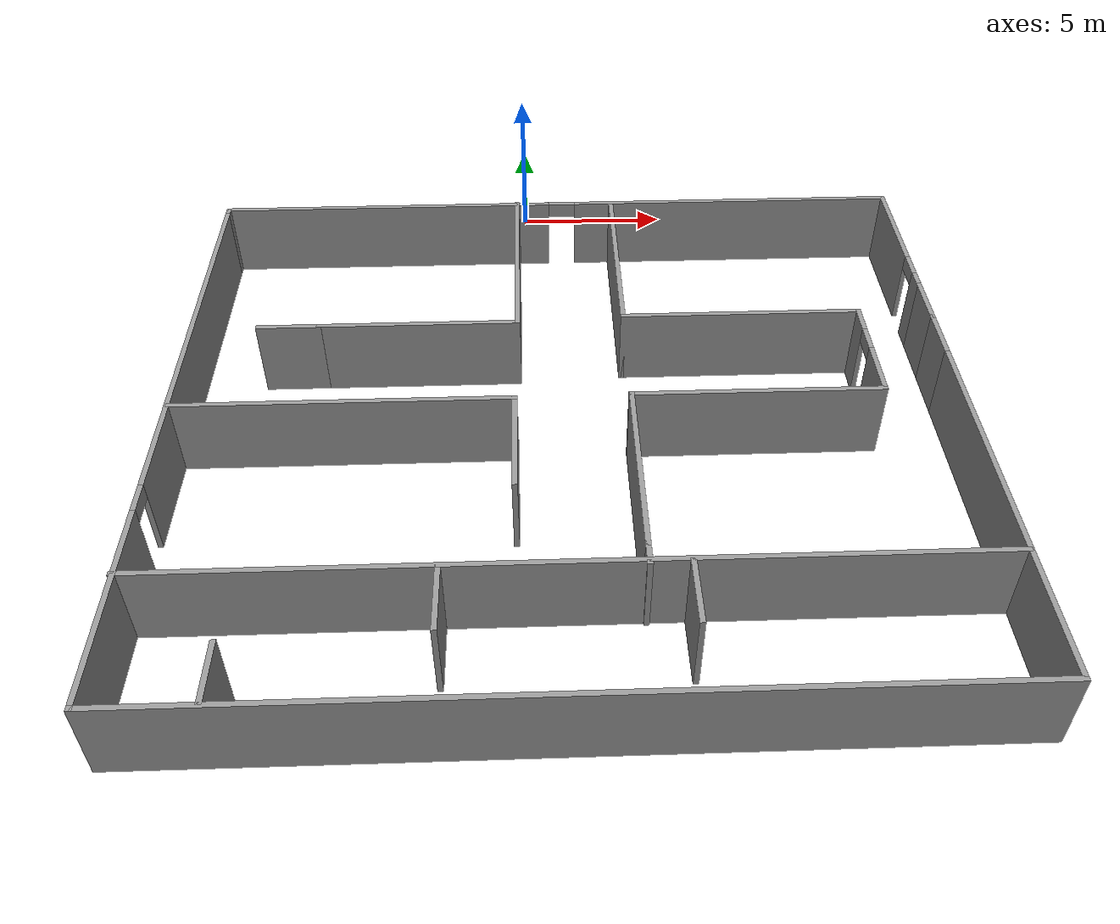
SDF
<?xml version='1.0'?>
<sdf version='1.7'>
  <model name='Multi_room_building'>
    <pose>1.14787 -11.2692 0 0 -0 0</pose>
    <link name='Door_3'>
      <collision name='Door_3_Collision'>
        <geometry>
          <box>
            <size>0.9 0.17 2</size>
          </box>
        </geometry>
        <pose>0 0 1 0 -0 0</pose>
      </collision>
      <visual name='Door_3_Visual'>
        <pose>0 0 1 0 -0 0</pose>
        <geometry>
          <box>
            <size>0.9 0.17 2</size>
          </box>
        </geometry>
        <material>
          <script>
            <uri>file://media/materials/scripts/gazebo.material</uri>
            <name>Gazebo/Grey</name>
          </script>
        </material>
      </visual>
      <pose>0.509152 -7.15046 0 0 -0 0</pose>
    </link>
    <link name='Wall_16'>
      <pose>0.019726 8.70583 0 0 -0 0</pose>
      <visual name='Wall_16_Visual_0'>
        <pose>-5.91708 0 1.25 0 -0 0</pose>
        <geometry>
          <box>
            <size>11.1658 0.15 2.5</size>
          </box>
        </geometry>
        <material>
          <script>
            <uri>file://media/materials/scripts/gazebo.material</uri>
            <name>Gazebo/Grey</name>
          </script>
          <ambient>1 1 1 1</ambient>
        </material>
        <meta>
          <layer>0</layer>
        </meta>
      </visual>
      <collision name='Wall_16_Collision_0'>
        <geometry>
          <box>
            <size>11.1658 0.15 2.5</size>
          </box>
        </geometry>
        <pose>-5.91708 0 1.25 0 -0 0</pose>
      </collision>
      <visual name='Wall_16_Visual_1'>
        <pose>6.03292 0 1.25 0 -0 0</pose>
        <geometry>
          <box>
            <size>10.9342 0.15 2.5</size>
          </box>
        </geometry>
        <material>
          <script>
            <uri>file://media/materials/scripts/gazebo.material</uri>
            <name>Gazebo/Grey</name>
          </script>
          <ambient>1 1 1 1</ambient>
        </material>
        <meta>
          <layer>0</layer>
        </meta>
      </visual>
      <collision name='Wall_16_Collision_1'>
        <geometry>
          <box>
            <size>10.9342 0.15 2.5</size>
          </box>
        </geometry>
        <pose>6.03292 0 1.25 0 -0 0</pose>
      </collision>
      <visual name='Wall_16_Visual_2'>
        <pose>0.115847 0 2.25 0 -0 0</pose>
        <geometry>
          <box>
            <size>0.9 0.15 0.5</size>
          </box>
        </geometry>
        <material>
          <script>
            <uri>file://media/materials/scripts/gazebo.material</uri>
            <name>Gazebo/Grey</name>
          </script>
          <ambient>1 1 1 1</ambient>
        </material>
        <meta>
          <layer>0</layer>
        </meta>
      </visual>
      <collision name='Wall_16_Collision_2'>
        <geometry>
          <box>
            <size>0.9 0.15 0.5</size>
          </box>
        </geometry>
        <pose>0.115847 0 2.25 0 -0 0</pose>
      </collision>
    </link>
    <link name='Wall_17'>
      <pose>11.4447 6.15583 0 0 -0 -1.5708</pose>
      <visual name='Wall_17_Visual_0'>
        <pose>-0.807552 0 1.25 0 -0 0</pose>
        <geometry>
          <box>
            <size>3.6349 0.15 2.5</size>
          </box>
        </geometry>
        <material>
          <script>
            <uri>file://media/materials/scripts/gazebo.material</uri>
            <name>Gazebo/Grey</name>
          </script>
          <ambient>1 1 1 1</ambient>
        </material>
        <meta>
          <layer>0</layer>
        </meta>
      </visual>
      <collision name='Wall_17_Collision_0'>
        <geometry>
          <box>
            <size>3.6349 0.15 2.5</size>
          </box>
        </geometry>
        <pose>-0.807552 0 1.25 0 -0 0</pose>
      </collision>
      <visual name='Wall_17_Visual_1'>
        <pose>2.26745 0 1.25 0 -0 0</pose>
        <geometry>
          <box>
            <size>0.715105 0.15 2.5</size>
          </box>
        </geometry>
        <material>
          <script>
            <uri>file://media/materials/scripts/gazebo.material</uri>
            <name>Gazebo/Grey</name>
          </script>
          <ambient>1 1 1 1</ambient>
        </material>
        <meta>
          <layer>0</layer>
        </meta>
      </visual>
      <collision name='Wall_17_Collision_1'>
        <geometry>
          <box>
            <size>0.715105 0.15 2.5</size>
          </box>
        </geometry>
        <pose>2.26745 0 1.25 0 -0 0</pose>
      </collision>
      <visual name='Wall_17_Visual_2'>
        <pose>1.45989 0 2.25 0 -0 0</pose>
        <geometry>
          <box>
            <size>0.9 0.15 0.5</size>
          </box>
        </geometry>
        <material>
          <script>
            <uri>file://media/materials/scripts/gazebo.material</uri>
            <name>Gazebo/Grey</name>
          </script>
          <ambient>1 1 1 1</ambient>
        </material>
        <meta>
          <layer>0</layer>
        </meta>
      </visual>
      <collision name='Wall_17_Collision_2'>
        <geometry>
          <box>
            <size>0.9 0.15 0.5</size>
          </box>
        </geometry>
        <pose>1.45989 0 2.25 0 -0 0</pose>
      </collision>
    </link>
    <link name='Wall_18'>
      <collision name='Wall_18_Collision'>
        <geometry>
          <box>
            <size>1.75 0.15 2.5</size>
          </box>
        </geometry>
        <pose>0 0 1.25 0 -0 0</pose>
      </collision>
      <visual name='Wall_18_Visual'>
        <pose>0 0 1.25 0 -0 0</pose>
        <geometry>
          <box>
            <size>1.75 0.15 2.5</size>
          </box>
        </geometry>
        <material>
          <script>
            <uri>file://media/materials/scripts/gazebo.material</uri>
            <name>Gazebo/Grey</name>
          </script>
          <ambient>1 1 1 1</ambient>
        </material>
        <meta>
          <layer>0</layer>
        </meta>
      </visual>
      <pose>11.4447 2.80583 0 0 -0 -1.5708</pose>
    </link>
    <link name='Wall_20'>
      <collision name='Wall_20_Collision'>
        <geometry>
          <box>
            <size>1.75 0.15 2.5</size>
          </box>
        </geometry>
        <pose>0 0 1.25 0 -0 0</pose>
      </collision>
      <visual name='Wall_20_Visual'>
        <pose>0 0 1.25 0 -0 0</pose>
        <geometry>
          <box>
            <size>1.75 0.15 2.5</size>
          </box>
        </geometry>
        <material>
          <script>
            <uri>file://media/materials/scripts/gazebo.material</uri>
            <name>Gazebo/Grey</name>
          </script>
          <ambient>1 1 1 1</ambient>
        </material>
        <meta>
          <layer>0</layer>
        </meta>
      </visual>
      <pose>11.4447 1.20583 0 0 -0 -1.5708</pose>
    </link>
    <link name='Wall_22'>
      <collision name='Wall_22_Collision'>
        <geometry>
          <box>
            <size>11.75 0.15 2.5</size>
          </box>
        </geometry>
        <pose>0 0 1.25 0 -0 0</pose>
      </collision>
      <visual name='Wall_22_Visual'>
        <pose>0 0 1.25 0 -0 0</pose>
        <geometry>
          <box>
            <size>11.75 0.15 2.5</size>
          </box>
        </geometry>
        <material>
          <script>
            <uri>file://media/materials/scripts/gazebo.material</uri>
            <name>Gazebo/Grey</name>
          </script>
          <ambient>1 1 1 1</ambient>
        </material>
        <meta>
          <layer>0</layer>
        </meta>
      </visual>
      <pose>11.4447 -5.39417 0 0 -0 -1.5708</pose>
    </link>
    <link name='Wall_23'>
      <collision name='Wall_23_Collision'>
        <geometry>
          <box>
            <size>23 0.15 2.5</size>
          </box>
        </geometry>
        <pose>0 0 1.25 0 -0 0</pose>
      </collision>
      <visual name='Wall_23_Visual'>
        <pose>0 0 1.25 0 -0 0</pose>
        <geometry>
          <box>
            <size>23 0.15 2.5</size>
          </box>
        </geometry>
        <material>
          <script>
            <uri>file://media/materials/scripts/gazebo.material</uri>
            <name>Gazebo/Grey</name>
          </script>
          <ambient>1 1 1 1</ambient>
        </material>
        <meta>
          <layer>0</layer>
        </meta>
      </visual>
      <pose>0.019726 -11.1942 0 0 -0 3.14159</pose>
    </link>
    <link name='Wall_24'>
      <pose>-11.4053 -1.39417 0 0 -0 1.5708</pose>
      <visual name='Wall_24_Visual_0'>
        <pose>-6.88983 0 1.25 0 -0 0</pose>
        <geometry>
          <box>
            <size>5.97033 0.15 2.5</size>
          </box>
        </geometry>
        <material>
          <script>
            <uri>file://media/materials/scripts/gazebo.material</uri>
            <name>Gazebo/Grey</name>
          </script>
          <ambient>1 1 1 1</ambient>
        </material>
        <meta>
          <layer>0</layer>
        </meta>
      </visual>
      <collision name='Wall_24_Collision_0'>
        <geometry>
          <box>
            <size>5.97033 0.15 2.5</size>
          </box>
        </geometry>
        <pose>-6.88983 0 1.25 0 -0 0</pose>
      </collision>
      <visual name='Wall_24_Visual_1'>
        <pose>3.43517 0 1.25 0 -0 0</pose>
        <geometry>
          <box>
            <size>12.8797 0.15 2.5</size>
          </box>
        </geometry>
        <material>
          <script>
            <uri>file://media/materials/scripts/gazebo.material</uri>
            <name>Gazebo/Grey</name>
          </script>
          <ambient>1 1 1 1</ambient>
        </material>
        <meta>
          <layer>0</layer>
        </meta>
      </visual>
      <collision name='Wall_24_Collision_1'>
        <geometry>
          <box>
            <size>12.8797 0.15 2.5</size>
          </box>
        </geometry>
        <pose>3.43517 0 1.25 0 -0 0</pose>
      </collision>
      <visual name='Wall_24_Visual_2'>
        <pose>-3.45467 0 2.25 0 -0 0</pose>
        <geometry>
          <box>
            <size>0.9 0.15 0.5</size>
          </box>
        </geometry>
        <material>
          <script>
            <uri>file://media/materials/scripts/gazebo.material</uri>
            <name>Gazebo/Grey</name>
          </script>
          <ambient>1 1 1 1</ambient>
        </material>
        <meta>
          <layer>0</layer>
        </meta>
      </visual>
      <collision name='Wall_24_Collision_2'>
        <geometry>
          <box>
            <size>0.9 0.15 0.5</size>
          </box>
        </geometry>
        <pose>-3.45467 0 2.25 0 -0 0</pose>
      </collision>
    </link>
    <link name='Wall_25'>
      <collision name='Wall_25_Collision'>
        <geometry>
          <box>
            <size>0.45 0.15 2.5</size>
          </box>
        </geometry>
        <pose>0 0 1.25 0 -0 0</pose>
      </collision>
      <visual name='Wall_25_Visual'>
        <pose>0 0 1.25 0 -0 0</pose>
        <geometry>
          <box>
            <size>0.45 0.15 2.5</size>
          </box>
        </geometry>
        <material>
          <script>
            <uri>file://media/materials/scripts/gazebo.material</uri>
            <name>Gazebo/Grey</name>
          </script>
          <ambient>1 1 1 1</ambient>
        </material>
        <meta>
          <layer>0</layer>
        </meta>
      </visual>
      <pose>-11.4053 8.55583 0 0 -0 1.5708</pose>
    </link>
    <link name='Wall_27'>
      <collision name='Wall_27_Collision'>
        <geometry>
          <box>
            <size>6.75 0.15 2.5</size>
          </box>
        </geometry>
        <pose>0 0 1.25 0 -0 0</pose>
      </collision>
      <visual name='Wall_27_Visual'>
        <pose>0 0 1.25 0 -0 0</pose>
        <geometry>
          <box>
            <size>6.75 0.15 2.5</size>
          </box>
        </geometry>
        <material>
          <script>
            <uri>file://media/materials/scripts/gazebo.material</uri>
            <name>Gazebo/Grey</name>
          </script>
          <ambient>1 1 1 1</ambient>
        </material>
        <meta>
          <layer>0</layer>
        </meta>
      </visual>
      <pose>-1.41448 5.46554 0 0 -0 -1.5708</pose>
    </link>
    <link name='Wall_28'>
      <collision name='Wall_28_Collision'>
        <geometry>
          <box>
            <size>6.25 0.15 2.5</size>
          </box>
        </geometry>
        <pose>0 0 1.25 0 -0 0</pose>
      </collision>
      <visual name='Wall_28_Visual'>
        <pose>0 0 1.25 0 -0 0</pose>
        <geometry>
          <box>
            <size>6.25 0.15 2.5</size>
          </box>
        </geometry>
        <material>
          <script>
            <uri>file://media/materials/scripts/gazebo.material</uri>
            <name>Gazebo/Grey</name>
          </script>
          <ambient>1 1 1 1</ambient>
        </material>
        <meta>
          <layer>0</layer>
        </meta>
      </visual>
      <pose>-4.46448 2.16554 0 0 -0 3.14159</pose>
    </link>
    <link name='Wall_29'>
      <collision name='Wall_29_Collision'>
        <geometry>
          <box>
            <size>2 0.15 2.5</size>
          </box>
        </geometry>
        <pose>0 0 1.25 0 -0 0</pose>
      </collision>
      <visual name='Wall_29_Visual'>
        <pose>0 0 1.25 0 -0 0</pose>
        <geometry>
          <box>
            <size>2 0.15 2.5</size>
          </box>
        </geometry>
        <material>
          <script>
            <uri>file://media/materials/scripts/gazebo.material</uri>
            <name>Gazebo/Grey</name>
          </script>
          <ambient>1 1 1 1</ambient>
        </material>
        <meta>
          <layer>0</layer>
        </meta>
      </visual>
      <pose>-8.43948 2.16554 0 0 -0 3.14159</pose>
    </link>
    <link name='Wall_31'>
      <collision name='Wall_31_Collision'>
        <geometry>
          <box>
            <size>6.5 0.15 2.5</size>
          </box>
        </geometry>
        <pose>0 0 1.25 0 -0 0</pose>
      </collision>
      <visual name='Wall_31_Visual'>
        <pose>0 0 1.25 0 -0 0</pose>
        <geometry>
          <box>
            <size>6.5 0.15 2.5</size>
          </box>
        </geometry>
        <material>
          <script>
            <uri>file://media/materials/scripts/gazebo.material</uri>
            <name>Gazebo/Grey</name>
          </script>
          <ambient>1 1 1 1</ambient>
        </material>
        <meta>
          <layer>0</layer>
        </meta>
      </visual>
      <pose>1.85611 5.52643 0 0 -0 -1.5708</pose>
    </link>
    <link name='Wall_33'>
      <collision name='Wall_33_Collision'>
        <geometry>
          <box>
            <size>23 0.15 2.5</size>
          </box>
        </geometry>
        <pose>0 0 1.25 0 -0 0</pose>
      </collision>
      <visual name='Wall_33_Visual'>
        <pose>0 0 1.25 0 -0 0</pose>
        <geometry>
          <box>
            <size>23 0.15 2.5</size>
          </box>
        </geometry>
        <material>
          <script>
            <uri>file://media/materials/scripts/gazebo.material</uri>
            <name>Gazebo/Grey</name>
          </script>
          <ambient>1 1 1 1</ambient>
        </material>
        <meta>
          <layer>0</layer>
        </meta>
      </visual>
      <pose>-0.019727 -7.37845 0 0 -0 0</pose>
    </link>
    <link name='Wall_35'>
      <collision name='Wall_35_Collision'>
        <geometry>
          <box>
            <size>7.5 0.15 2.5</size>
          </box>
        </geometry>
        <pose>0 0 1.25 0 -0 0</pose>
      </collision>
      <visual name='Wall_35_Visual'>
        <pose>0 0 1.25 0 -0 0</pose>
        <geometry>
          <box>
            <size>7.5 0.15 2.5</size>
          </box>
        </geometry>
        <material>
          <script>
            <uri>file://media/materials/scripts/gazebo.material</uri>
            <name>Gazebo/Grey</name>
          </script>
          <ambient>1 1 1 1</ambient>
        </material>
        <meta>
          <layer>0</layer>
        </meta>
      </visual>
      <pose>5.53111 2.35143 0 0 -0 0</pose>
    </link>
    <link name='Wall_36'>
      <pose>9.20611 0.551429 0 0 -0 -1.5708</pose>
      <visual name='Wall_36_Visual_0'>
        <pose>-1.38212 0 1.25 0 -0 0</pose>
        <geometry>
          <box>
            <size>0.985757 0.15 2.5</size>
          </box>
        </geometry>
        <material>
          <script>
            <uri>file://media/materials/scripts/gazebo.material</uri>
            <name>Gazebo/Grey</name>
          </script>
          <ambient>1 1 1 1</ambient>
        </material>
        <meta>
          <layer>0</layer>
        </meta>
      </visual>
      <collision name='Wall_36_Collision_0'>
        <geometry>
          <box>
            <size>0.985757 0.15 2.5</size>
          </box>
        </geometry>
        <pose>-1.38212 0 1.25 0 -0 0</pose>
      </collision>
      <visual name='Wall_36_Visual_1'>
        <pose>0.942878 0 1.25 0 -0 0</pose>
        <geometry>
          <box>
            <size>1.86424 0.15 2.5</size>
          </box>
        </geometry>
        <material>
          <script>
            <uri>file://media/materials/scripts/gazebo.material</uri>
            <name>Gazebo/Grey</name>
          </script>
          <ambient>1 1 1 1</ambient>
        </material>
        <meta>
          <layer>0</layer>
        </meta>
      </visual>
      <collision name='Wall_36_Collision_1'>
        <geometry>
          <box>
            <size>1.86424 0.15 2.5</size>
          </box>
        </geometry>
        <pose>0.942878 0 1.25 0 -0 0</pose>
      </collision>
      <visual name='Wall_36_Visual_2'>
        <pose>-0.439243 0 2.25 0 -0 0</pose>
        <geometry>
          <box>
            <size>0.9 0.15 0.5</size>
          </box>
        </geometry>
        <material>
          <script>
            <uri>file://media/materials/scripts/gazebo.material</uri>
            <name>Gazebo/Grey</name>
          </script>
          <ambient>1 1 1 1</ambient>
        </material>
        <meta>
          <layer>0</layer>
        </meta>
      </visual>
      <collision name='Wall_36_Collision_2'>
        <geometry>
          <box>
            <size>0.9 0.15 0.5</size>
          </box>
        </geometry>
        <pose>-0.439243 0 2.25 0 -0 0</pose>
      </collision>
    </link>
    <link name='Wall_37'>
      <collision name='Wall_37_Collision'>
        <geometry>
          <box>
            <size>7.5 0.15 2.5</size>
          </box>
        </geometry>
        <pose>0 0 1.25 0 -0 0</pose>
      </collision>
      <visual name='Wall_37_Visual'>
        <pose>0 0 1.25 0 -0 0</pose>
        <geometry>
          <box>
            <size>7.5 0.15 2.5</size>
          </box>
        </geometry>
        <material>
          <script>
            <uri>file://media/materials/scripts/gazebo.material</uri>
            <name>Gazebo/Grey</name>
          </script>
          <ambient>1 1 1 1</ambient>
        </material>
        <meta>
          <layer>0</layer>
        </meta>
      </visual>
      <pose>5.53111 -1.24857 0 0 -0 3.14159</pose>
    </link>
    <link name='Wall_38'>
      <collision name='Wall_38_Collision'>
        <geometry>
          <box>
            <size>5.75 0.15 2.5</size>
          </box>
        </geometry>
        <pose>0 0 1.25 0 -0 0</pose>
      </collision>
      <visual name='Wall_38_Visual'>
        <pose>0 0 1.25 0 -0 0</pose>
        <geometry>
          <box>
            <size>5.75 0.15 2.5</size>
          </box>
        </geometry>
        <material>
          <script>
            <uri>file://media/materials/scripts/gazebo.material</uri>
            <name>Gazebo/Grey</name>
          </script>
          <ambient>1 1 1 1</ambient>
        </material>
        <meta>
          <layer>0</layer>
        </meta>
      </visual>
      <pose>1.85611 -4.04857 0 0 -0 -1.5708</pose>
    </link>
    <link name='Wall_46'>
      <collision name='Wall_46_Collision'>
        <geometry>
          <box>
            <size>0.75 0.15 2.5</size>
          </box>
        </geometry>
        <pose>0 0 1.25 0 -0 0</pose>
      </collision>
      <visual name='Wall_46_Visual'>
        <pose>0 0 1.25 0 -0 0</pose>
        <geometry>
          <box>
            <size>0.75 0.15 2.5</size>
          </box>
        </geometry>
        <material>
          <script>
            <uri>file://media/materials/scripts/gazebo.material</uri>
            <name>Gazebo/Grey</name>
          </script>
          <ambient>1 1 1 1</ambient>
        </material>
        <meta>
          <layer>0</layer>
        </meta>
      </visual>
      <pose>1.85611 -7.14857 0 0 -0 -1.5708</pose>
    </link>
    <link name='Wall_48'>
      <collision name='Wall_48_Collision'>
        <geometry>
          <box>
            <size>2 0.15 2.5</size>
          </box>
        </geometry>
        <pose>0 0 1.25 0 -0 0</pose>
      </collision>
      <visual name='Wall_48_Visual'>
        <pose>0 0 1.25 0 -0 0</pose>
        <geometry>
          <box>
            <size>2 0.15 2.5</size>
          </box>
        </geometry>
        <material>
          <script>
            <uri>file://media/materials/scripts/gazebo.material</uri>
            <name>Gazebo/Grey</name>
          </script>
          <ambient>1 1 1 1</ambient>
        </material>
        <meta>
          <layer>0</layer>
        </meta>
      </visual>
      <pose>-3.42105 -8.35619 0 0 -0 -1.5708</pose>
    </link>
    <link name='Wall_50'>
      <collision name='Wall_50_Collision'>
        <geometry>
          <box>
            <size>2 0.15 2.5</size>
          </box>
        </geometry>
        <pose>0 0 1.25 0 -0 0</pose>
      </collision>
      <visual name='Wall_50_Visual'>
        <pose>0 0 1.25 0 -0 0</pose>
        <geometry>
          <box>
            <size>2 0.15 2.5</size>
          </box>
        </geometry>
        <material>
          <script>
            <uri>file://media/materials/scripts/gazebo.material</uri>
            <name>Gazebo/Grey</name>
          </script>
          <ambient>1 1 1 1</ambient>
        </material>
        <meta>
          <layer>0</layer>
        </meta>
      </visual>
      <pose>2.94213 -8.35619 0 0 -0 -1.5708</pose>
    </link>
    <link name='Wall_54'>
      <collision name='Wall_54_Collision'>
        <geometry>
          <box>
            <size>1.75 0.15 2.5</size>
          </box>
        </geometry>
        <pose>0 0 1.25 0 -0 0</pose>
      </collision>
      <visual name='Wall_54_Visual'>
        <pose>0 0 1.25 0 -0 0</pose>
        <geometry>
          <box>
            <size>1.75 0.15 2.5</size>
          </box>
        </geometry>
        <material>
          <script>
            <uri>file://media/materials/scripts/gazebo.material</uri>
            <name>Gazebo/Grey</name>
          </script>
          <ambient>1 1 1 1</ambient>
        </material>
        <meta>
          <layer>0</layer>
        </meta>
      </visual>
      <pose>-8.55308 -10.3184 0 0 -0 1.5708</pose>
    </link>
    <link name='Wall_56'>
      <collision name='Wall_56_Collision'>
        <geometry>
          <box>
            <size>10 0.15 2.5</size>
          </box>
        </geometry>
        <pose>0 0 1.25 0 -0 0</pose>
      </collision>
      <visual name='Wall_56_Visual'>
        <pose>0 0 1.25 0 -0 0</pose>
        <geometry>
          <box>
            <size>10 0.15 2.5</size>
          </box>
        </geometry>
        <material>
          <script>
            <uri>file://media/materials/scripts/gazebo.material</uri>
            <name>Gazebo/Grey</name>
          </script>
          <ambient>1 1 1 1</ambient>
        </material>
        <meta>
          <layer>0</layer>
        </meta>
      </visual>
      <pose>-6.43537 -1.29294 0 0 -0 0</pose>
    </link>
    <link name='Wall_57'>
      <collision name='Wall_57_Collision'>
        <geometry>
          <box>
            <size>3.5 0.15 2.5</size>
          </box>
        </geometry>
        <pose>0 0 1.25 0 -0 0</pose>
      </collision>
      <visual name='Wall_57_Visual'>
        <pose>0 0 1.25 0 -0 0</pose>
        <geometry>
          <box>
            <size>3.5 0.15 2.5</size>
          </box>
        </geometry>
        <material>
          <script>
            <uri>file://media/materials/scripts/gazebo.material</uri>
            <name>Gazebo/Grey</name>
          </script>
          <ambient>1 1 1 1</ambient>
        </material>
        <meta>
          <layer>0</layer>
        </meta>
      </visual>
      <pose>-1.51037 -2.96794 0 0 -0 -1.5708</pose>
    </link>
    <static>1</static>
  </model>
</sdf>
